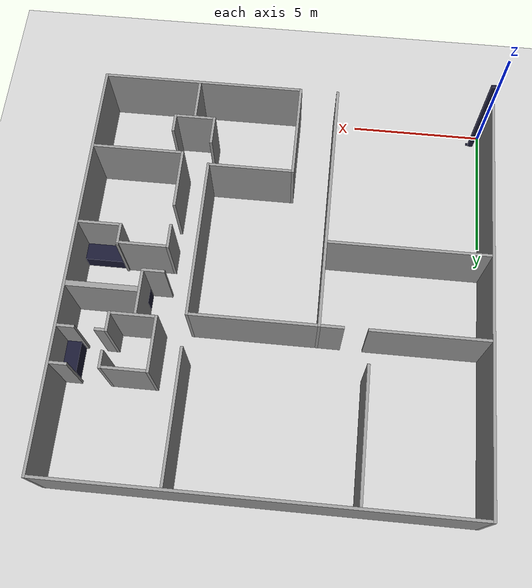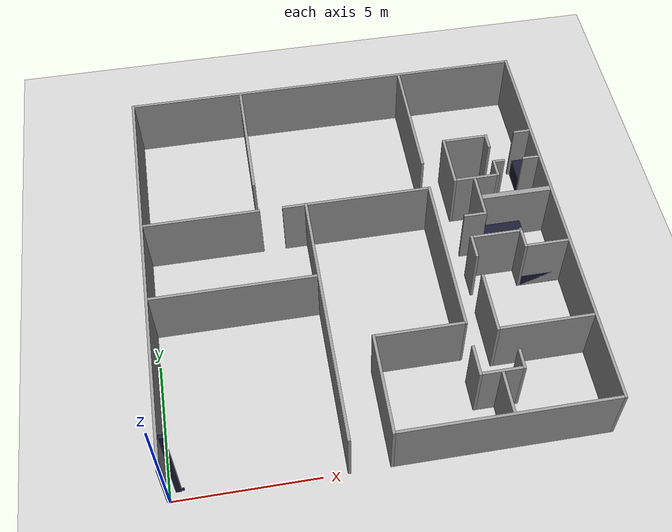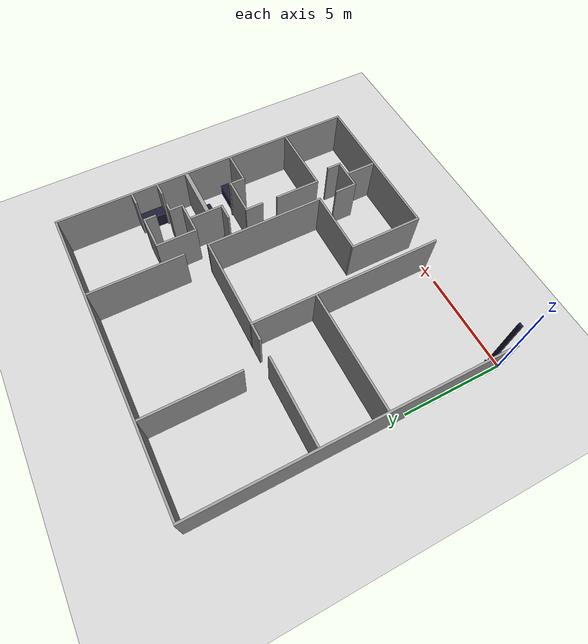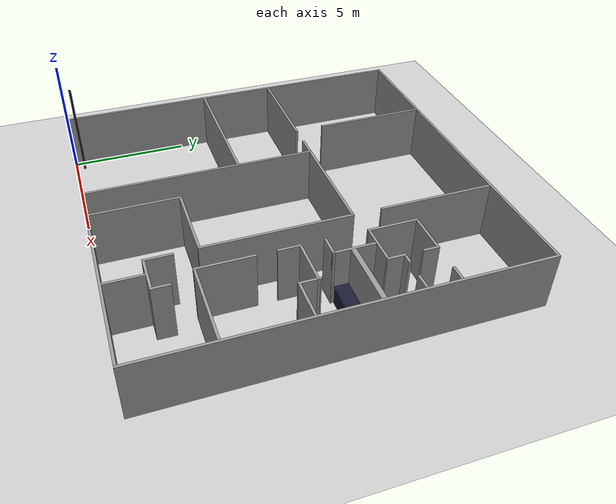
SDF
<sdf version="1.7">
 <world name="default">
  <light name="sun" type="directional">
   <pose>0 0 10 0 -0 0</pose>
   <diffuse>0.8 0.8 0.8 1</diffuse>
   <specular>0.2 0.2 0.2 1</specular>
   <attenuation>
    <range>1000</range>
    <constant>0.9</constant>
    <linear>0.01</linear>
    <quadratic>0.001</quadratic>
   </attenuation>
   <direction>-0.5 0.1 -0.9</direction>
   <spot><inner_angle>0</inner_angle><outer_angle>0</outer_angle><falloff>0</falloff></spot>
  </light>
  <model name="ground_plane">
   <static>1</static>
   <link name="link">
    <collision name="collision">
     <geometry><plane><normal>0 0 1</normal><size>100 100</size></plane></geometry>
     <surface>
      <contact><collide_bitmask>65535</collide_bitmask></contact>
      <friction><ode><mu>100</mu><mu2>50</mu2></ode></friction>
     </surface>
    </collision>
    <visual name="visual">
     <cast_shadows>0</cast_shadows>
     <geometry><plane><normal>0 0 1</normal><size>100 100</size></plane></geometry>
     <material>
      <script><uri>file://media/materials/scripts/gazebo.material</uri><name>Gazebo/Grey</name></script>
     </material>
    </visual>
   </link>
  </model>
  <gravity>0 0 -9.8</gravity>
  <magnetic_field>6e-06 2.3e-05 -4.2e-05</magnetic_field>
  <atmosphere type="adiabatic"/>
  <physics type="ode">
   <max_step_size>0.001</max_step_size>
   <real_time_factor>1</real_time_factor>
   <real_time_update_rate>1000</real_time_update_rate>
  </physics>
  <scene><ambient>0.4 0.4 0.4 1</ambient><background>0.7 0.7 0.7 1</background><shadows>1</shadows></scene>
  <audio><device>default</device></audio>
  <spherical_coordinates>
   <surface_model>EARTH_WGS84</surface_model>
   <latitude_deg>0</latitude_deg>
   <longitude_deg>0</longitude_deg>
   <elevation>0</elevation>
   <heading_deg>0</heading_deg>
  </spherical_coordinates>
  <model name="robot_home">
   <static>1</static>
   <link name="x_origin_marker">
    <pose>0.3 0.35 2 0 -0 0</pose>
    <visual name="part1">
     <cast_shadows>0</cast_shadows>
     <geometry><box><size>0.2 0.1 4</size></box></geometry>
     <material>
      <ambient>1 0 0 1</ambient>
      <diffuse>0.1 0.1 0.2 1</diffuse>
      <specular>0 0 0 0</specular>
      <emissive>0 0 0 1</emissive>
     </material>
    </visual>
    <visual name="part2">
     <cast_shadows>0</cast_shadows>
     <pose>0.15 0 -1.95 0 -0 0</pose>
     <geometry><sphere><radius>0.05</radius></sphere></geometry>
     <material>
      <ambient>0 0.5 0 1</ambient>
      <diffuse>0.1 0.1 0.2 1</diffuse>
      <specular>0 0 0 0</specular>
      <emissive>0 0 0 1</emissive>
     </material>
    </visual>
   </link>
   <link name="north_wall">
    <pose>-0.0508 7.7089 1.2192 0 -0 0</pose>
    <collision name="collision"><geometry><box><size>0.1016 15.4178 2.4384</size></box></geometry></collision>
    <visual name="visual">
     <cast_shadows>0</cast_shadows>
     <geometry><box><size>0.1016 15.4178 2.4384</size></box></geometry>
     <material>
      <script>
       <uri>model://grey_wall/materials/scripts</uri>
       <uri>model://grey_wall/materials/textures</uri>
       <name>vrc/grey_wall</name>
      </script>
     </material>
    </visual>
   </link>
   <link name="south_wall">
    <pose>14.8082 7.7089 1.2192 0 -0 0</pose>
    <collision name="collision"><geometry><box><size>0.1016 15.4178 2.4384</size></box></geometry></collision>
    <visual name="visual">
     <cast_shadows>0</cast_shadows>
     <geometry><box><size>0.1016 15.4178 2.4384</size></box></geometry>
     <material>
      <script>
       <uri>model://grey_wall/materials/scripts</uri>
       <uri>model://grey_wall/materials/textures</uri>
       <name>vrc/grey_wall</name>
      </script>
     </material>
    </visual>
   </link>
   <link name="east_wall">
    <pose>7.3787 15.367 1.2192 0 -0 0</pose>
    <collision name="collision"><geometry><box><size>14.7574 0.1016 2.4384</size></box></geometry></collision>
    <visual name="visual">
     <cast_shadows>0</cast_shadows>
     <geometry><box><size>14.7574 0.1016 2.4384</size></box></geometry>
     <material>
      <script>
       <uri>model://grey_wall/materials/scripts</uri>
       <uri>model://grey_wall/materials/textures</uri>
       <name>vrc/grey_wall</name>
      </script>
     </material>
    </visual>
   </link>
   <link name="north_atrium_wall">
    <pose>5.8674 4.7625 1.2192 0 -0 0</pose>
    <collision name="collision"><geometry><box><size>0.1016 9.525 2.4384</size></box></geometry></collision>
    <visual name="visual">
     <cast_shadows>0</cast_shadows>
     <geometry><box><size>0.1016 9.525 2.4384</size></box></geometry>
     <material>
      <script>
       <uri>model://grey_wall/materials/scripts</uri>
       <uri>model://grey_wall/materials/textures</uri>
       <name>vrc/grey_wall</name>
      </script>
     </material>
    </visual>
   </link>
   <link name="hobby_east_wall_1">
    <pose>2.0955 9.4742 1.2192 0 -0 0</pose>
    <collision name="collision"><geometry><box><size>4.191 0.1016 2.4384</size></box></geometry></collision>
    <visual name="visual">
     <cast_shadows>0</cast_shadows>
     <geometry><box><size>4.191 0.1016 2.4384</size></box></geometry>
     <material>
      <script>
       <uri>model://grey_wall/materials/scripts</uri>
       <uri>model://grey_wall/materials/textures</uri>
       <name>vrc/grey_wall</name>
      </script>
     </material>
    </visual>
   </link>
   <link name="hobby_east_wall_2">
    <pose>5.4102 9.4742 1.2192 0 -0 0</pose>
    <collision name="collision"><geometry><box><size>0.8128 0.1016 2.4384</size></box></geometry></collision>
    <visual name="visual">
     <cast_shadows>0</cast_shadows>
     <geometry><box><size>0.8128 0.1016 2.4384</size></box></geometry>
     <material>
      <script>
       <uri>model://grey_wall/materials/scripts</uri>
       <uri>model://grey_wall/materials/textures</uri>
       <name>vrc/grey_wall</name>
      </script>
     </material>
    </visual>
   </link>
   <link name="hobby_west_wall">
    <pose>2.9083 6.3246 1.2192 0 -0 0</pose>
    <collision name="collision"><geometry><box><size>5.8166 0.1016 2.4384</size></box></geometry></collision>
    <visual name="visual">
     <cast_shadows>0</cast_shadows>
     <geometry><box><size>5.8166 0.1016 2.4384</size></box></geometry>
     <material>
      <script>
       <uri>model://grey_wall/materials/scripts</uri>
       <uri>model://grey_wall/materials/textures</uri>
       <name>vrc/grey_wall</name>
      </script>
     </material>
    </visual>
   </link>
   <link name="kitchen_lr_divider">
    <pose>4.1148 12.9921 1.2192 0 -0 0</pose>
    <collision name="collision"><geometry><box><size>0.1016 4.6482 2.4384</size></box></geometry></collision>
    <visual name="visual">
     <cast_shadows>0</cast_shadows>
     <geometry><box><size>0.1016 4.6482 2.4384</size></box></geometry>
     <material>
      <script>
       <uri>model://grey_wall/materials/scripts</uri>
       <uri>model://grey_wall/materials/textures</uri>
       <name>vrc/grey_wall</name>
      </script>
     </material>
    </visual>
   </link>
   <link name="master_br_kitchen_divider">
    <pose>10.414 12.9794 1.2192 0 -0 0</pose>
    <collision name="collision"><geometry><box><size>0.1016 4.6736 2.4384</size></box></geometry></collision>
    <visual name="visual">
     <cast_shadows>0</cast_shadows>
     <geometry><box><size>0.1016 4.6736 2.4384</size></box></geometry>
     <material>
      <script>
       <uri>model://grey_wall/materials/scripts</uri>
       <uri>model://grey_wall/materials/textures</uri>
       <name>vrc/grey_wall</name>
      </script>
     </material>
    </visual>
   </link>
   <link name="master_br_closet_ew_long">
    <pose>11.43 10.6426 1.2192 0 -0 0</pose>
    <collision name="collision"><geometry><box><size>0.1016 2.032 2.4384</size></box></geometry></collision>
    <visual name="visual">
     <cast_shadows>0</cast_shadows>
     <geometry><box><size>0.1016 2.032 2.4384</size></box></geometry>
     <material>
      <script>
       <uri>model://grey_wall/materials/scripts</uri>
       <uri>model://grey_wall/materials/textures</uri>
       <name>vrc/grey_wall</name>
      </script>
     </material>
    </visual>
   </link>
   <link name="master_br_closet_ns_east">
    <pose>12.2428 11.6078 1.2192 0 -0 0</pose>
    <collision name="collision"><geometry><box><size>1.524 0.1016 2.4384</size></box></geometry></collision>
    <visual name="visual">
     <cast_shadows>0</cast_shadows>
     <geometry><box><size>1.524 0.1016 2.4384</size></box></geometry>
     <material>
      <script>
       <uri>model://grey_wall/materials/scripts</uri>
       <uri>model://grey_wall/materials/textures</uri>
       <name>vrc/grey_wall</name>
      </script>
     </material>
    </visual>
   </link>
   <link name="master_br_closet_ns_west">
    <pose>12.2428 9.6774 1.2192 0 -0 0</pose>
    <collision name="collision"><geometry><box><size>1.524 0.1016 2.4384</size></box></geometry></collision>
    <visual name="visual">
     <cast_shadows>0</cast_shadows>
     <geometry><box><size>1.524 0.1016 2.4384</size></box></geometry>
     <material>
      <script>
       <uri>model://grey_wall/materials/scripts</uri>
       <uri>model://grey_wall/materials/textures</uri>
       <name>vrc/grey_wall</name>
      </script>
     </material>
    </visual>
   </link>
   <link name="master_br_closet_ew_short_east">
    <pose>13.0556 11.3411 1.2192 0 -0 0</pose>
    <collision name="collision"><geometry><box><size>0.1016 0.635 2.4384</size></box></geometry></collision>
    <visual name="visual">
     <cast_shadows>0</cast_shadows>
     <geometry><box><size>0.1016 0.635 2.4384</size></box></geometry>
     <material>
      <script>
       <uri>model://grey_wall/materials/scripts</uri>
       <uri>model://grey_wall/materials/textures</uri>
       <name>vrc/grey_wall</name>
      </script>
     </material>
    </visual>
   </link>
   <link name="master_br_closet_ew_short_west">
    <pose>13.0556 9.9949 1.2192 0 -0 0</pose>
    <collision name="collision"><geometry><box><size>0.1016 0.7366 2.4384</size></box></geometry></collision>
    <visual name="visual">
     <cast_shadows>0</cast_shadows>
     <geometry><box><size>0.1016 0.7366 2.4384</size></box></geometry>
     <material>
      <script>
       <uri>model://grey_wall/materials/scripts</uri>
       <uri>model://grey_wall/materials/textures</uri>
       <name>vrc/grey_wall</name>
      </script>
     </material>
    </visual>
   </link>
   <link name="master_br_closet_ns_west_to_door">
    <pose>13.2842 10.3124 1.2192 0 -0 0</pose>
    <collision name="collision"><geometry><box><size>0.3556 0.1016 2.4384</size></box></geometry></collision>
    <visual name="visual">
     <cast_shadows>0</cast_shadows>
     <geometry><box><size>0.3556 0.1016 2.4384</size></box></geometry>
     <material>
      <script>
       <uri>model://grey_wall/materials/scripts</uri>
       <uri>model://grey_wall/materials/textures</uri>
       <name>vrc/grey_wall</name>
      </script>
     </material>
    </visual>
   </link>
   <link name="master_br_vanity_wall_east">
    <pose>14.4526 11.6078 1.2192 0 -0 0</pose>
    <collision name="collision"><geometry><box><size>0.6096 0.1016 2.4384</size></box></geometry></collision>
    <visual name="visual">
     <cast_shadows>0</cast_shadows>
     <geometry><box><size>0.6096 0.1016 2.4384</size></box></geometry>
     <material>
      <script>
       <uri>model://grey_wall/materials/scripts</uri>
       <uri>model://grey_wall/materials/textures</uri>
       <name>vrc/grey_wall</name>
      </script>
     </material>
    </visual>
   </link>
   <link name="master_br_vanity_wall_west">
    <pose>14.4526 10.287 1.2192 0 -0 0</pose>
    <collision name="collision"><geometry><box><size>0.6096 0.1016 2.4384</size></box></geometry></collision>
    <visual name="visual">
     <cast_shadows>0</cast_shadows>
     <geometry><box><size>0.6096 0.1016 2.4384</size></box></geometry>
     <material>
      <script>
       <uri>model://grey_wall/materials/scripts</uri>
       <uri>model://grey_wall/materials/textures</uri>
       <name>vrc/grey_wall</name>
      </script>
     </material>
    </visual>
   </link>
   <link name="master_br_vanity">
    <pose>14.5034 10.9474 0.4064 0 -0 0</pose>
    <collision name="collision"><geometry><box><size>0.508 1.2192 0.8128</size></box></geometry></collision>
    <visual name="visual">
     <cast_shadows>0</cast_shadows>
     <geometry><box><size>0.508 1.2192 0.8128</size></box></geometry>
     <material>
      <ambient>1 0 0 1</ambient>
      <diffuse>0.1 0.1 0.2 1</diffuse>
      <specular>0 0 0 0</specular>
      <emissive>0 0 0 1</emissive>
     </material>
    </visual>
   </link>
   <link name="master_br_guest_shower_divider">
    <pose>13.4874 8.7376 1.2192 0 -0 0</pose>
    <collision name="collision"><geometry><box><size>2.54 0.2032 2.4384</size></box></geometry></collision>
    <visual name="visual">
     <cast_shadows>0</cast_shadows>
     <geometry><box><size>2.54 0.2032 2.4384</size></box></geometry>
     <material>
      <script>
       <uri>model://grey_wall/materials/scripts</uri>
       <uri>model://grey_wall/materials/textures</uri>
       <name>vrc/grey_wall</name>
      </script>
     </material>
    </visual>
   </link>
   <link name="guest_bath_north_wall">
    <pose>12.1666 8.7884 1.2192 0 -0 0</pose>
    <collision name="collision"><geometry><box><size>0.1016 1.6764 2.4384</size></box></geometry></collision>
    <visual name="visual">
     <cast_shadows>0</cast_shadows>
     <geometry><box><size>0.1016 1.6764 2.4384</size></box></geometry>
     <material>
      <script>
       <uri>model://grey_wall/materials/scripts</uri>
       <uri>model://grey_wall/materials/textures</uri>
       <name>vrc/grey_wall</name>
      </script>
     </material>
    </visual>
   </link>
   <link name="guest_bath_closet_east_wall">
    <pose>11.7983 8.001 1.2192 0 -0 0</pose>
    <collision name="collision"><geometry><box><size>0.8382 0.1016 2.4384</size></box></geometry></collision>
    <visual name="visual">
     <cast_shadows>0</cast_shadows>
     <geometry><box><size>0.8382 0.1016 2.4384</size></box></geometry>
     <material>
      <script>
       <uri>model://grey_wall/materials/scripts</uri>
       <uri>model://grey_wall/materials/textures</uri>
       <name>vrc/grey_wall</name>
      </script>
     </material>
    </visual>
   </link>
   <link name="guest_bath_west_wall1">
    <pose>12.3762 7.0358 1.2192 0 -0 0</pose>
    <collision name="collision"><geometry><box><size>1.7907 0.1016 2.4384</size></box></geometry></collision>
    <visual name="visual">
     <cast_shadows>0</cast_shadows>
     <geometry><box><size>1.7907 0.1016 2.4384</size></box></geometry>
     <material>
      <script>
       <uri>model://grey_wall/materials/scripts</uri>
       <uri>model://grey_wall/materials/textures</uri>
       <name>vrc/grey_wall</name>
      </script>
     </material>
    </visual>
   </link>
   <link name="guest_bath_west_wall2">
    <pose>14.0145 6.35 1.2192 0 -0 0</pose>
    <collision name="collision"><geometry><box><size>1.4859 0.1016 2.4384</size></box></geometry></collision>
    <visual name="visual">
     <cast_shadows>0</cast_shadows>
     <geometry><box><size>1.4859 0.1016 2.4384</size></box></geometry>
     <material>
      <script>
       <uri>model://grey_wall/materials/scripts</uri>
       <uri>model://grey_wall/materials/textures</uri>
       <name>vrc/grey_wall</name>
      </script>
     </material>
    </visual>
   </link>
   <link name="guest_bathtub_end_wall">
    <pose>13.2207 6.7183 1.2192 0 -0 0</pose>
    <collision name="collision"><geometry><box><size>0.1016 0.8382 2.4384</size></box></geometry></collision>
    <visual name="visual">
     <cast_shadows>0</cast_shadows>
     <geometry><box><size>0.1016 0.8382 2.4384</size></box></geometry>
     <material>
      <script>
       <uri>model://grey_wall/materials/scripts</uri>
       <uri>model://grey_wall/materials/textures</uri>
       <name>vrc/grey_wall</name>
      </script>
     </material>
    </visual>
   </link>
   <link name="guest_bath_vanity">
    <pose>12.954 8.3566 0.4064 0 -0 0</pose>
    <collision name="collision"><geometry><box><size>1.6764 0.5588 0.8128</size></box></geometry></collision>
    <visual name="visual">
     <cast_shadows>0</cast_shadows>
     <geometry><box><size>1.6764 0.5588 0.8128</size></box></geometry>
     <material>
      <ambient>0 0 0 1</ambient>
      <diffuse>0.1 0.1 0.2 1</diffuse>
      <specular>0 0 0 0</specular>
      <emissive>0 0 0 1</emissive>
     </material>
    </visual>
   </link>
   <link name="guest_bathtub">
    <pose>14.0145 6.6675 0.3048 0 -0 0</pose>
    <collision name="collision"><geometry><box><size>1.4859 0.7366 0.6096</size></box></geometry></collision>
    <visual name="visual">
     <cast_shadows>0</cast_shadows>
     <geometry><box><size>1.4859 0.7366 0.6096</size></box></geometry>
     <material>
      <ambient>0.9 0.9 0.9 1</ambient>
      <diffuse>0.1 0.1 0.2 1</diffuse>
      <specular>0 0 0 0</specular>
      <emissive>0 0 0 1</emissive>
     </material>
    </visual>
   </link>
   <link name="music_west_wall">
    <pose>13.1191 3.2004 1.2192 0 -0 0</pose>
    <collision name="collision"><geometry><box><size>3.2766 0.1016 2.4384</size></box></geometry></collision>
    <visual name="visual">
     <cast_shadows>0</cast_shadows>
     <geometry><box><size>3.2766 0.1016 2.4384</size></box></geometry>
     <material>
      <script>
       <uri>model://grey_wall/materials/scripts</uri>
       <uri>model://grey_wall/materials/textures</uri>
       <name>vrc/grey_wall</name>
      </script>
     </material>
    </visual>
   </link>
   <link name="music_north_ew_1">
    <pose>11.43 6.6294 1.2192 0 -0 0</pose>
    <collision name="collision"><geometry><box><size>0.1016 0.9144 2.4384</size></box></geometry></collision>
    <visual name="visual">
     <cast_shadows>0</cast_shadows>
     <geometry><box><size>0.1016 0.9144 2.4384</size></box></geometry>
     <material>
      <script>
       <uri>model://grey_wall/materials/scripts</uri>
       <uri>model://grey_wall/materials/textures</uri>
       <name>vrc/grey_wall</name>
      </script>
     </material>
    </visual>
   </link>
   <link name="music_north_ew_2">
    <pose>11.43 4.2799 1.2192 0 -0 0</pose>
    <collision name="collision"><geometry><box><size>0.1016 2.2606 2.4384</size></box></geometry></collision>
    <visual name="visual">
     <cast_shadows>0</cast_shadows>
     <geometry><box><size>0.1016 2.2606 2.4384</size></box></geometry>
     <material>
      <script>
       <uri>model://grey_wall/materials/scripts</uri>
       <uri>model://grey_wall/materials/textures</uri>
       <name>vrc/grey_wall</name>
      </script>
     </material>
    </visual>
   </link>
   <link name="cat_computer_west_wall">
    <pose>11.049 0.0508 1.2192 0 -0 0</pose>
    <collision name="collision"><geometry><box><size>7.4168 0.1016 2.4384</size></box></geometry></collision>
    <visual name="visual">
     <cast_shadows>0</cast_shadows>
     <geometry><box><size>7.4168 0.1016 2.4384</size></box></geometry>
     <material>
      <script>
       <uri>model://grey_wall/materials/scripts</uri>
       <uri>model://grey_wall/materials/textures</uri>
       <name>vrc/grey_wall</name>
      </script>
     </material>
    </visual>
   </link>
   <link name="cat_north_ns">
    <pose>11.176 0.8382 1.2192 0 -0 0</pose>
    <collision name="collision"><geometry><box><size>0.1016 1.4732 2.4384</size></box></geometry></collision>
    <visual name="visual">
     <cast_shadows>0</cast_shadows>
     <geometry><box><size>0.1016 1.4732 2.4384</size></box></geometry>
     <material>
      <script>
       <uri>model://grey_wall/materials/scripts</uri>
       <uri>model://grey_wall/materials/textures</uri>
       <name>vrc/grey_wall</name>
      </script>
     </material>
    </visual>
   </link>
   <link name="closet_west_hall_back">
    <pose>11.176 1.6256 1.2192 0 -0 0</pose>
    <collision name="collision"><geometry><box><size>1.3716 0.1016 2.4384</size></box></geometry></collision>
    <visual name="visual">
     <cast_shadows>0</cast_shadows>
     <geometry><box><size>1.3716 0.1016 2.4384</size></box></geometry>
     <material>
      <script>
       <uri>model://grey_wall/materials/scripts</uri>
       <uri>model://grey_wall/materials/textures</uri>
       <name>vrc/grey_wall</name>
      </script>
     </material>
    </visual>
   </link>
   <link name="closet_east_wall_north">
    <pose>11.9126 1.9431 1.2192 0 -0 0</pose>
    <collision name="collision"><geometry><box><size>0.1016 0.7366 2.4384</size></box></geometry></collision>
    <visual name="visual">
     <cast_shadows>0</cast_shadows>
     <geometry><box><size>0.1016 0.7366 2.4384</size></box></geometry>
     <material>
      <script>
       <uri>model://grey_wall/materials/scripts</uri>
       <uri>model://grey_wall/materials/textures</uri>
       <name>vrc/grey_wall</name>
      </script>
     </material>
    </visual>
   </link>
   <link name="closet_west_hall_north">
    <pose>10.4394 2.1336 1.2192 0 -0 0</pose>
    <collision name="collision"><geometry><box><size>0.1016 1.1176 2.4384</size></box></geometry></collision>
    <visual name="visual">
     <cast_shadows>0</cast_shadows>
     <geometry><box><size>0.1016 1.1176 2.4384</size></box></geometry>
     <material>
      <script>
       <uri>model://grey_wall/materials/scripts</uri>
       <uri>model://grey_wall/materials/textures</uri>
       <name>vrc/grey_wall</name>
      </script>
     </material>
    </visual>
   </link>
   <link name="computer_north">
    <pose>7.2898 1.8288 1.2192 0 -0 0</pose>
    <collision name="collision"><geometry><box><size>0.1016 3.6576 2.4384</size></box></geometry></collision>
    <visual name="visual">
     <cast_shadows>0</cast_shadows>
     <geometry><box><size>0.1016 3.6576 2.4384</size></box></geometry>
     <material>
      <script>
       <uri>model://grey_wall/materials/scripts</uri>
       <uri>model://grey_wall/materials/textures</uri>
       <name>vrc/grey_wall</name>
      </script>
     </material>
    </visual>
   </link>
   <link name="computer_east_wall">
    <pose>8.8646 3.6068 1.2192 0 -0 0</pose>
    <collision name="collision"><geometry><box><size>3.048 0.1016 2.4384</size></box></geometry></collision>
    <visual name="visual">
     <cast_shadows>0</cast_shadows>
     <geometry><box><size>3.048 0.1016 2.4384</size></box></geometry>
     <material>
      <script>
       <uri>model://grey_wall/materials/scripts</uri>
       <uri>model://grey_wall/materials/textures</uri>
       <name>vrc/grey_wall</name>
      </script>
     </material>
    </visual>
   </link>
   <link name="long_hall_north">
    <pose>10.414 6.5405 1.2192 0 -0 0</pose>
    <collision name="collision"><geometry><box><size>0.1016 5.969 2.4384</size></box></geometry></collision>
    <visual name="visual">
     <cast_shadows>0</cast_shadows>
     <geometry><box><size>0.1016 5.969 2.4384</size></box></geometry>
     <material>
      <script>
       <uri>model://grey_wall/materials/scripts</uri>
       <uri>model://grey_wall/materials/textures</uri>
       <name>vrc/grey_wall</name>
      </script>
     </material>
    </visual>
   </link>
   <link name="atrium_east_wall">
    <pose>8.1407 9.4742 1.2192 0 -0 0</pose>
    <collision name="collision"><geometry><box><size>4.445 0.1016 2.4384</size></box></geometry></collision>
    <visual name="visual">
     <cast_shadows>0</cast_shadows>
     <geometry><box><size>4.445 0.1016 2.4384</size></box></geometry>
     <material>
      <script>
       <uri>model://grey_wall/materials/scripts</uri>
       <uri>model://grey_wall/materials/textures</uri>
       <name>vrc/grey_wall</name>
      </script>
     </material>
    </visual>
   </link>
  </model>
 </world>
</sdf>
